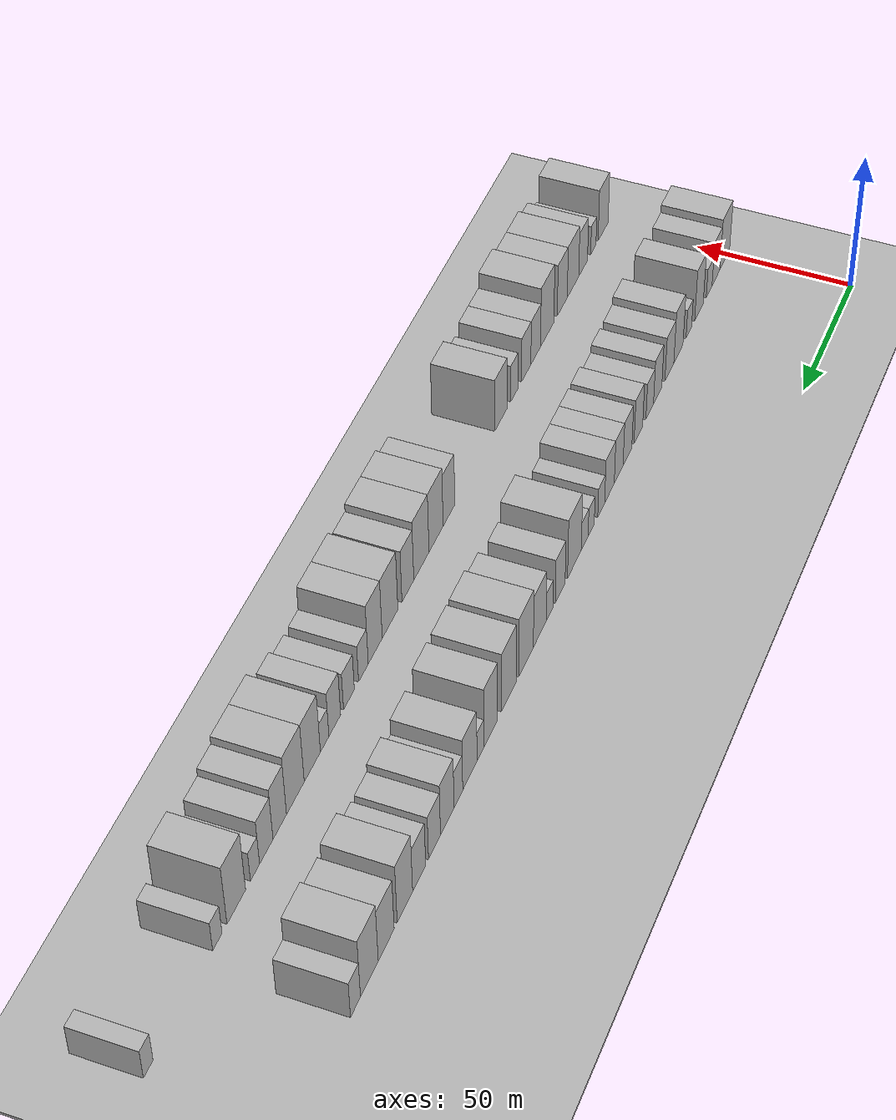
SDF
<sdf version="1.6">
 <world name="default">
  <include><name>ground_plane_1</name><uri>model://HANNAS_ground_plane</uri></include>
  <include>
   <name>ground_plane_2</name>
   <uri>model://HANNAS_ground_plane</uri>
   <pose>100 0 0  0 0 0</pose>
  </include>
  <model name="building_29">
   <static>1</static>
   <pose>50.0000 3.5850 0 0.000000 0.000000 0.000000</pose>
   <link name="link">
    <pose>0 0 10.50 0 0 0</pose>
    <collision name="collision"><geometry><box><size>20.0000 9.9423 21.0000</size></box></geometry></collision>
    <visual name="visual">
     <cast_shadows>0</cast_shadows>
     <geometry><box><size>20.0000 9.9423 21.0000</size></box></geometry>
     <material>
      <script>
       <uri>model://HANNAS_wall/materials/scripts</uri>
       <uri>model://HANNAS_wall/materials/textures</uri>
       <name>vrc/HANNAS_wall</name>
      </script>
     </material>
    </visual>
   </link>
  </model>
  <model name="building_30">
   <static>1</static>
   <pose>50.0000 12.4400 0 0.000000 0.000000 0.000000</pose>
   <link name="link">
    <pose>0 0 9.00 0 0 0</pose>
    <collision name="collision"><geometry><box><size>20.0000 7.7675 18.0000</size></box></geometry></collision>
    <visual name="visual">
     <cast_shadows>0</cast_shadows>
     <geometry><box><size>20.0000 7.7675 18.0000</size></box></geometry>
     <material>
      <script>
       <uri>model://HANNAS_wall/materials/scripts</uri>
       <uri>model://HANNAS_wall/materials/textures</uri>
       <name>vrc/HANNAS_wall</name>
      </script>
     </material>
    </visual>
   </link>
  </model>
  <model name="building_31">
   <static>1</static>
   <pose>50.0000 19.2083 0 0.000000 0.000000 0.000000</pose>
   <link name="link">
    <pose>0 0 6.00 0 0 0</pose>
    <collision name="collision"><geometry><box><size>20.0000 5.7690 12.0000</size></box></geometry></collision>
    <visual name="visual">
     <cast_shadows>0</cast_shadows>
     <geometry><box><size>20.0000 5.7690 12.0000</size></box></geometry>
     <material>
      <script>
       <uri>model://HANNAS_wall/materials/scripts</uri>
       <uri>model://HANNAS_wall/materials/textures</uri>
       <name>vrc/HANNAS_wall</name>
      </script>
     </material>
    </visual>
   </link>
  </model>
  <model name="building_32">
   <static>1</static>
   <pose>50.0000 29.2972 0 0.000000 0.000000 0.000000</pose>
   <link name="link">
    <pose>0 0 10.50 0 0 0</pose>
    <collision name="collision"><geometry><box><size>20.0000 8.4088 21.0000</size></box></geometry></collision>
    <visual name="visual">
     <cast_shadows>0</cast_shadows>
     <geometry><box><size>20.0000 8.4088 21.0000</size></box></geometry>
     <material>
      <script>
       <uri>model://HANNAS_wall/materials/scripts</uri>
       <uri>model://HANNAS_wall/materials/textures</uri>
       <name>vrc/HANNAS_wall</name>
      </script>
     </material>
    </visual>
   </link>
  </model>
  <model name="building_33">
   <static>1</static>
   <pose>50.0000 39.1456 0 0.000000 0.000000 0.000000</pose>
   <link name="link">
    <pose>0 0 6.00 0 0 0</pose>
    <collision name="collision"><geometry><box><size>20.0000 5.2881 12.0000</size></box></geometry></collision>
    <visual name="visual">
     <cast_shadows>0</cast_shadows>
     <geometry><box><size>20.0000 5.2881 12.0000</size></box></geometry>
     <material>
      <script>
       <uri>model://HANNAS_wall/materials/scripts</uri>
       <uri>model://HANNAS_wall/materials/textures</uri>
       <name>vrc/HANNAS_wall</name>
      </script>
     </material>
    </visual>
   </link>
  </model>
  <model name="building_34">
   <static>1</static>
   <pose>50.0000 49.1430 0 0.000000 0.000000 0.000000</pose>
   <link name="link">
    <pose>0 0 10.50 0 0 0</pose>
    <collision name="collision"><geometry><box><size>20.0000 8.7066 21.0000</size></box></geometry></collision>
    <visual name="visual">
     <cast_shadows>0</cast_shadows>
     <geometry><box><size>20.0000 8.7066 21.0000</size></box></geometry>
     <material>
      <script>
       <uri>model://HANNAS_wall/materials/scripts</uri>
       <uri>model://HANNAS_wall/materials/textures</uri>
       <name>vrc/HANNAS_wall</name>
      </script>
     </material>
    </visual>
   </link>
  </model>
  <model name="building_35">
   <static>1</static>
   <pose>50.0000 57.6699 0 0.000000 0.000000 0.000000</pose>
   <link name="link">
    <pose>0 0 9.00 0 0 0</pose>
    <collision name="collision"><geometry><box><size>20.0000 8.3474 18.0000</size></box></geometry></collision>
    <visual name="visual">
     <cast_shadows>0</cast_shadows>
     <geometry><box><size>20.0000 8.3474 18.0000</size></box></geometry>
     <material>
      <script>
       <uri>model://HANNAS_wall/materials/scripts</uri>
       <uri>model://HANNAS_wall/materials/textures</uri>
       <name>vrc/HANNAS_wall</name>
      </script>
     </material>
    </visual>
   </link>
  </model>
  <model name="building_36">
   <static>1</static>
   <pose>50.0000 68.6641 0 0.000000 0.000000 0.000000</pose>
   <link name="link">
    <pose>0 0 9.00 0 0 0</pose>
    <collision name="collision"><geometry><box><size>20.0000 7.6409 18.0000</size></box></geometry></collision>
    <visual name="visual">
     <cast_shadows>0</cast_shadows>
     <geometry><box><size>20.0000 7.6409 18.0000</size></box></geometry>
     <material>
      <script>
       <uri>model://HANNAS_wall/materials/scripts</uri>
       <uri>model://HANNAS_wall/materials/textures</uri>
       <name>vrc/HANNAS_wall</name>
      </script>
     </material>
    </visual>
   </link>
  </model>
  <model name="building_37">
   <static>1</static>
   <pose>50.0000 75.9450 0 0.000000 0.000000 0.000000</pose>
   <link name="link">
    <pose>0 0 7.50 0 0 0</pose>
    <collision name="collision"><geometry><box><size>20.0000 6.9210 15.0000</size></box></geometry></collision>
    <visual name="visual">
     <cast_shadows>0</cast_shadows>
     <geometry><box><size>20.0000 6.9210 15.0000</size></box></geometry>
     <material>
      <script>
       <uri>model://HANNAS_wall/materials/scripts</uri>
       <uri>model://HANNAS_wall/materials/textures</uri>
       <name>vrc/HANNAS_wall</name>
      </script>
     </material>
    </visual>
   </link>
  </model>
  <model name="building_38">
   <static>1</static>
   <pose>50.0000 86.2765 0 0.000000 0.000000 0.000000</pose>
   <link name="link">
    <pose>0 0 9.00 0 0 0</pose>
    <collision name="collision"><geometry><box><size>20.0000 7.7419 18.0000</size></box></geometry></collision>
    <visual name="visual">
     <cast_shadows>0</cast_shadows>
     <geometry><box><size>20.0000 7.7419 18.0000</size></box></geometry>
     <material>
      <script>
       <uri>model://HANNAS_wall/materials/scripts</uri>
       <uri>model://HANNAS_wall/materials/textures</uri>
       <name>vrc/HANNAS_wall</name>
      </script>
     </material>
    </visual>
   </link>
  </model>
  <model name="building_39">
   <static>1</static>
   <pose>50.0000 96.0376 0 0.000000 0.000000 0.000000</pose>
   <link name="link">
    <pose>0 0 9.00 0 0 0</pose>
    <collision name="collision"><geometry><box><size>20.0000 7.7805 18.0000</size></box></geometry></collision>
    <visual name="visual">
     <cast_shadows>0</cast_shadows>
     <geometry><box><size>20.0000 7.7805 18.0000</size></box></geometry>
     <material>
      <script>
       <uri>model://HANNAS_wall/materials/scripts</uri>
       <uri>model://HANNAS_wall/materials/textures</uri>
       <name>vrc/HANNAS_wall</name>
      </script>
     </material>
    </visual>
   </link>
  </model>
  <model name="building_40">
   <static>1</static>
   <pose>50.0000 103.7960 0 0.000000 0.000000 0.000000</pose>
   <link name="link">
    <pose>0 0 9.00 0 0 0</pose>
    <collision name="collision"><geometry><box><size>20.0000 7.7362 18.0000</size></box></geometry></collision>
    <visual name="visual">
     <cast_shadows>0</cast_shadows>
     <geometry><box><size>20.0000 7.7362 18.0000</size></box></geometry>
     <material>
      <script>
       <uri>model://HANNAS_wall/materials/scripts</uri>
       <uri>model://HANNAS_wall/materials/textures</uri>
       <name>vrc/HANNAS_wall</name>
      </script>
     </material>
    </visual>
   </link>
  </model>
  <model name="building_41">
   <static>1</static>
   <pose>50.0000 111.8288 0 0.000000 0.000000 0.000000</pose>
   <link name="link">
    <pose>0 0 9.00 0 0 0</pose>
    <collision name="collision"><geometry><box><size>20.0000 8.3295 18.0000</size></box></geometry></collision>
    <visual name="visual">
     <cast_shadows>0</cast_shadows>
     <geometry><box><size>20.0000 8.3295 18.0000</size></box></geometry>
     <material>
      <script>
       <uri>model://HANNAS_wall/materials/scripts</uri>
       <uri>model://HANNAS_wall/materials/textures</uri>
       <name>vrc/HANNAS_wall</name>
      </script>
     </material>
    </visual>
   </link>
  </model>
  <model name="building_42">
   <static>1</static>
   <pose>50.0000 118.9388 0 0.000000 0.000000 0.000000</pose>
   <link name="link">
    <pose>0 0 6.00 0 0 0</pose>
    <collision name="collision"><geometry><box><size>20.0000 5.8905 12.0000</size></box></geometry></collision>
    <visual name="visual">
     <cast_shadows>0</cast_shadows>
     <geometry><box><size>20.0000 5.8905 12.0000</size></box></geometry>
     <material>
      <script>
       <uri>model://HANNAS_wall/materials/scripts</uri>
       <uri>model://HANNAS_wall/materials/textures</uri>
       <name>vrc/HANNAS_wall</name>
      </script>
     </material>
    </visual>
   </link>
  </model>
  <model name="building_43">
   <static>1</static>
   <pose>50.0000 127.4671 0 0.000000 0.000000 0.000000</pose>
   <link name="link">
    <pose>0 0 6.00 0 0 0</pose>
    <collision name="collision"><geometry><box><size>20.0000 5.1661 12.0000</size></box></geometry></collision>
    <visual name="visual">
     <cast_shadows>0</cast_shadows>
     <geometry><box><size>20.0000 5.1661 12.0000</size></box></geometry>
     <material>
      <script>
       <uri>model://HANNAS_wall/materials/scripts</uri>
       <uri>model://HANNAS_wall/materials/textures</uri>
       <name>vrc/HANNAS_wall</name>
      </script>
     </material>
    </visual>
   </link>
  </model>
  <model name="building_44">
   <static>1</static>
   <pose>50.0000 132.9723 0 0.000000 0.000000 0.000000</pose>
   <link name="link">
    <pose>0 0 6.00 0 0 0</pose>
    <collision name="collision"><geometry><box><size>20.0000 5.8444 12.0000</size></box></geometry></collision>
    <visual name="visual">
     <cast_shadows>0</cast_shadows>
     <geometry><box><size>20.0000 5.8444 12.0000</size></box></geometry>
     <material>
      <script>
       <uri>model://HANNAS_wall/materials/scripts</uri>
       <uri>model://HANNAS_wall/materials/textures</uri>
       <name>vrc/HANNAS_wall</name>
      </script>
     </material>
    </visual>
   </link>
  </model>
  <model name="building_45">
   <static>1</static>
   <pose>50.0000 141.5381 0 0.000000 0.000000 0.000000</pose>
   <link name="link">
    <pose>0 0 12.00 0 0 0</pose>
    <collision name="collision"><geometry><box><size>20.0000 11.2872 24.0000</size></box></geometry></collision>
    <visual name="visual">
     <cast_shadows>0</cast_shadows>
     <geometry><box><size>20.0000 11.2872 24.0000</size></box></geometry>
     <material>
      <script>
       <uri>model://HANNAS_wall/materials/scripts</uri>
       <uri>model://HANNAS_wall/materials/textures</uri>
       <name>vrc/HANNAS_wall</name>
      </script>
     </material>
    </visual>
   </link>
  </model>
  <model name="building_46">
   <static>1</static>
   <pose>50.0000 153.1510 0 0.000000 0.000000 0.000000</pose>
   <link name="link">
    <pose>0 0 9.00 0 0 0</pose>
    <collision name="collision"><geometry><box><size>20.0000 7.9388 18.0000</size></box></geometry></collision>
    <visual name="visual">
     <cast_shadows>0</cast_shadows>
     <geometry><box><size>20.0000 7.9388 18.0000</size></box></geometry>
     <material>
      <script>
       <uri>model://HANNAS_wall/materials/scripts</uri>
       <uri>model://HANNAS_wall/materials/textures</uri>
       <name>vrc/HANNAS_wall</name>
      </script>
     </material>
    </visual>
   </link>
  </model>
  <model name="building_47">
   <static>1</static>
   <pose>50.0000 161.8052 0 0.000000 0.000000 0.000000</pose>
   <link name="link">
    <pose>0 0 6.00 0 0 0</pose>
    <collision name="collision"><geometry><box><size>20.0000 5.3695 12.0000</size></box></geometry></collision>
    <visual name="visual">
     <cast_shadows>0</cast_shadows>
     <geometry><box><size>20.0000 5.3695 12.0000</size></box></geometry>
     <material>
      <script>
       <uri>model://HANNAS_wall/materials/scripts</uri>
       <uri>model://HANNAS_wall/materials/textures</uri>
       <name>vrc/HANNAS_wall</name>
      </script>
     </material>
    </visual>
   </link>
  </model>
  <model name="building_48">
   <static>1</static>
   <pose>50.0000 169.5422 0 0.000000 0.000000 0.000000</pose>
   <link name="link">
    <pose>0 0 10.50 0 0 0</pose>
    <collision name="collision"><geometry><box><size>20.0000 10.1045 21.0000</size></box></geometry></collision>
    <visual name="visual">
     <cast_shadows>0</cast_shadows>
     <geometry><box><size>20.0000 10.1045 21.0000</size></box></geometry>
     <material>
      <script>
       <uri>model://HANNAS_wall/materials/scripts</uri>
       <uri>model://HANNAS_wall/materials/textures</uri>
       <name>vrc/HANNAS_wall</name>
      </script>
     </material>
    </visual>
   </link>
  </model>
  <model name="building_49">
   <static>1</static>
   <pose>50.0000 180.2540 0 0.000000 0.000000 0.000000</pose>
   <link name="link">
    <pose>0 0 12.00 0 0 0</pose>
    <collision name="collision"><geometry><box><size>20.0000 11.3189 24.0000</size></box></geometry></collision>
    <visual name="visual">
     <cast_shadows>0</cast_shadows>
     <geometry><box><size>20.0000 11.3189 24.0000</size></box></geometry>
     <material>
      <script>
       <uri>model://HANNAS_wall/materials/scripts</uri>
       <uri>model://HANNAS_wall/materials/textures</uri>
       <name>vrc/HANNAS_wall</name>
      </script>
     </material>
    </visual>
   </link>
  </model>
  <model name="building_50">
   <static>1</static>
   <pose>50.0000 193.4808 0 0.000000 0.000000 0.000000</pose>
   <link name="link">
    <pose>0 0 12.00 0 0 0</pose>
    <collision name="collision"><geometry><box><size>20.0000 11.1347 24.0000</size></box></geometry></collision>
    <visual name="visual">
     <cast_shadows>0</cast_shadows>
     <geometry><box><size>20.0000 11.1347 24.0000</size></box></geometry>
     <material>
      <script>
       <uri>model://HANNAS_wall/materials/scripts</uri>
       <uri>model://HANNAS_wall/materials/textures</uri>
       <name>vrc/HANNAS_wall</name>
      </script>
     </material>
    </visual>
   </link>
  </model>
  <model name="building_51">
   <static>1</static>
   <pose>50.0000 207.0687 0 0.000000 0.000000 0.000000</pose>
   <link name="link">
    <pose>0 0 12.00 0 0 0</pose>
    <collision name="collision"><geometry><box><size>20.0000 10.0411 24.0000</size></box></geometry></collision>
    <visual name="visual">
     <cast_shadows>0</cast_shadows>
     <geometry><box><size>20.0000 10.0411 24.0000</size></box></geometry>
     <material>
      <script>
       <uri>model://HANNAS_wall/materials/scripts</uri>
       <uri>model://HANNAS_wall/materials/textures</uri>
       <name>vrc/HANNAS_wall</name>
      </script>
     </material>
    </visual>
   </link>
  </model>
  <model name="building_52">
   <static>1</static>
   <pose>50.0000 214.6872 0 0.000000 0.000000 0.000000</pose>
   <link name="link">
    <pose>0 0 6.00 0 0 0</pose>
    <collision name="collision"><geometry><box><size>20.0000 5.1960 12.0000</size></box></geometry></collision>
    <visual name="visual">
     <cast_shadows>0</cast_shadows>
     <geometry><box><size>20.0000 5.1960 12.0000</size></box></geometry>
     <material>
      <script>
       <uri>model://HANNAS_wall/materials/scripts</uri>
       <uri>model://HANNAS_wall/materials/textures</uri>
       <name>vrc/HANNAS_wall</name>
      </script>
     </material>
    </visual>
   </link>
  </model>
  <model name="building_53">
   <static>1</static>
   <pose>50.0000 222.4880 0 0.000000 0.000000 0.000000</pose>
   <link name="link">
    <pose>0 0 10.50 0 0 0</pose>
    <collision name="collision"><geometry><box><size>20.0000 10.4055 21.0000</size></box></geometry></collision>
    <visual name="visual">
     <cast_shadows>0</cast_shadows>
     <geometry><box><size>20.0000 10.4055 21.0000</size></box></geometry>
     <material>
      <script>
       <uri>model://HANNAS_wall/materials/scripts</uri>
       <uri>model://HANNAS_wall/materials/textures</uri>
       <name>vrc/HANNAS_wall</name>
      </script>
     </material>
    </visual>
   </link>
  </model>
  <model name="building_54">
   <static>1</static>
   <pose>50.0000 230.7958 0 0.000000 0.000000 0.000000</pose>
   <link name="link">
    <pose>0 0 7.50 0 0 0</pose>
    <collision name="collision"><geometry><box><size>20.0000 6.2102 15.0000</size></box></geometry></collision>
    <visual name="visual">
     <cast_shadows>0</cast_shadows>
     <geometry><box><size>20.0000 6.2102 15.0000</size></box></geometry>
     <material>
      <script>
       <uri>model://HANNAS_wall/materials/scripts</uri>
       <uri>model://HANNAS_wall/materials/textures</uri>
       <name>vrc/HANNAS_wall</name>
      </script>
     </material>
    </visual>
   </link>
  </model>
  <model name="building_55">
   <static>1</static>
   <pose>50.0000 238.6877 0 0.000000 0.000000 0.000000</pose>
   <link name="link">
    <pose>0 0 10.50 0 0 0</pose>
    <collision name="collision"><geometry><box><size>20.0000 9.5736 21.0000</size></box></geometry></collision>
    <visual name="visual">
     <cast_shadows>0</cast_shadows>
     <geometry><box><size>20.0000 9.5736 21.0000</size></box></geometry>
     <material>
      <script>
       <uri>model://HANNAS_wall/materials/scripts</uri>
       <uri>model://HANNAS_wall/materials/textures</uri>
       <name>vrc/HANNAS_wall</name>
      </script>
     </material>
    </visual>
   </link>
  </model>
  <model name="building_56">
   <static>1</static>
   <pose>50.0000 247.6380 0 0.000000 0.000000 0.000000</pose>
   <link name="link">
    <pose>0 0 9.00 0 0 0</pose>
    <collision name="collision"><geometry><box><size>20.0000 8.3271 18.0000</size></box></geometry></collision>
    <visual name="visual">
     <cast_shadows>0</cast_shadows>
     <geometry><box><size>20.0000 8.3271 18.0000</size></box></geometry>
     <material>
      <script>
       <uri>model://HANNAS_wall/materials/scripts</uri>
       <uri>model://HANNAS_wall/materials/textures</uri>
       <name>vrc/HANNAS_wall</name>
      </script>
     </material>
    </visual>
   </link>
  </model>
  <model name="building_57">
   <static>1</static>
   <pose>50.0000 258.2415 0 0.000000 0.000000 0.000000</pose>
   <link name="link">
    <pose>0 0 9.00 0 0 0</pose>
    <collision name="collision"><geometry><box><size>20.0000 8.8799 18.0000</size></box></geometry></collision>
    <visual name="visual">
     <cast_shadows>0</cast_shadows>
     <geometry><box><size>20.0000 8.8799 18.0000</size></box></geometry>
     <material>
      <script>
       <uri>model://HANNAS_wall/materials/scripts</uri>
       <uri>model://HANNAS_wall/materials/textures</uri>
       <name>vrc/HANNAS_wall</name>
      </script>
     </material>
    </visual>
   </link>
  </model>
  <model name="building_58">
   <static>1</static>
   <pose>50.0000 267.8703 0 0.000000 0.000000 0.000000</pose>
   <link name="link">
    <pose>0 0 12.00 0 0 0</pose>
    <collision name="collision"><geometry><box><size>20.0000 10.3775 24.0000</size></box></geometry></collision>
    <visual name="visual">
     <cast_shadows>0</cast_shadows>
     <geometry><box><size>20.0000 10.3775 24.0000</size></box></geometry>
     <material>
      <script>
       <uri>model://HANNAS_wall/materials/scripts</uri>
       <uri>model://HANNAS_wall/materials/textures</uri>
       <name>vrc/HANNAS_wall</name>
      </script>
     </material>
    </visual>
   </link>
  </model>
  <model name="building_59">
   <static>1</static>
   <pose>50.0000 280.2783 0 0.000000 0.000000 0.000000</pose>
   <link name="link">
    <pose>0 0 10.50 0 0 0</pose>
    <collision name="collision"><geometry><box><size>20.0000 10.4386 21.0000</size></box></geometry></collision>
    <visual name="visual">
     <cast_shadows>0</cast_shadows>
     <geometry><box><size>20.0000 10.4386 21.0000</size></box></geometry>
     <material>
      <script>
       <uri>model://HANNAS_wall/materials/scripts</uri>
       <uri>model://HANNAS_wall/materials/textures</uri>
       <name>vrc/HANNAS_wall</name>
      </script>
     </material>
    </visual>
   </link>
  </model>
  <model name="building_60">
   <static>1</static>
   <pose>50.0000 291.2309 0 0.000000 0.000000 0.000000</pose>
   <link name="link">
    <pose>0 0 12.00 0 0 0</pose>
    <collision name="collision"><geometry><box><size>20.0000 11.4666 24.0000</size></box></geometry></collision>
    <visual name="visual">
     <cast_shadows>0</cast_shadows>
     <geometry><box><size>20.0000 11.4666 24.0000</size></box></geometry>
     <material>
      <script>
       <uri>model://HANNAS_wall/materials/scripts</uri>
       <uri>model://HANNAS_wall/materials/textures</uri>
       <name>vrc/HANNAS_wall</name>
      </script>
     </material>
    </visual>
   </link>
  </model>
  <model name="building_61">
   <static>1</static>
   <pose>50.0000 300.1494 0 0.000000 0.000000 0.000000</pose>
   <link name="link">
    <pose>0 0 7.50 0 0 0</pose>
    <collision name="collision"><geometry><box><size>20.0000 6.3704 15.0000</size></box></geometry></collision>
    <visual name="visual">
     <cast_shadows>0</cast_shadows>
     <geometry><box><size>20.0000 6.3704 15.0000</size></box></geometry>
     <material>
      <script>
       <uri>model://HANNAS_wall/materials/scripts</uri>
       <uri>model://HANNAS_wall/materials/textures</uri>
       <name>vrc/HANNAS_wall</name>
      </script>
     </material>
    </visual>
   </link>
  </model>
  <model name="building_96">
   <static>1</static>
   <pose>90.0000 4.2254 0 0.000000 0.000000 0.000000</pose>
   <link name="link">
    <pose>0 0 10.50 0 0 0</pose>
    <collision name="collision"><geometry><box><size>20.0000 9.4362 21.0000</size></box></geometry></collision>
    <visual name="visual">
     <cast_shadows>0</cast_shadows>
     <geometry><box><size>20.0000 9.4362 21.0000</size></box></geometry>
     <material>
      <script>
       <uri>model://HANNAS_wall/materials/scripts</uri>
       <uri>model://HANNAS_wall/materials/textures</uri>
       <name>vrc/HANNAS_wall</name>
      </script>
     </material>
    </visual>
   </link>
  </model>
  <model name="building_97">
   <static>1</static>
   <pose>90.0000 13.3908 0 0.000000 0.000000 0.000000</pose>
   <link name="link">
    <pose>0 0 6.00 0 0 0</pose>
    <collision name="collision"><geometry><box><size>20.0000 4.8945 12.0000</size></box></geometry></collision>
    <visual name="visual">
     <cast_shadows>0</cast_shadows>
     <geometry><box><size>20.0000 4.8945 12.0000</size></box></geometry>
     <material>
      <script>
       <uri>model://HANNAS_wall/materials/scripts</uri>
       <uri>model://HANNAS_wall/materials/textures</uri>
       <name>vrc/HANNAS_wall</name>
      </script>
     </material>
    </visual>
   </link>
  </model>
  <model name="building_98">
   <static>1</static>
   <pose>90.0000 22.8667 0 0.000000 0.000000 0.000000</pose>
   <link name="link">
    <pose>0 0 9.00 0 0 0</pose>
    <collision name="collision"><geometry><box><size>20.0000 8.0575 18.0000</size></box></geometry></collision>
    <visual name="visual">
     <cast_shadows>0</cast_shadows>
     <geometry><box><size>20.0000 8.0575 18.0000</size></box></geometry>
     <material>
      <script>
       <uri>model://HANNAS_wall/materials/scripts</uri>
       <uri>model://HANNAS_wall/materials/textures</uri>
       <name>vrc/HANNAS_wall</name>
      </script>
     </material>
    </visual>
   </link>
  </model>
  <model name="building_99">
   <static>1</static>
   <pose>90.0000 32.1004 0 0.000000 0.000000 0.000000</pose>
   <link name="link">
    <pose>0 0 10.50 0 0 0</pose>
    <collision name="collision"><geometry><box><size>20.0000 10.4099 21.0000</size></box></geometry></collision>
    <visual name="visual">
     <cast_shadows>0</cast_shadows>
     <geometry><box><size>20.0000 10.4099 21.0000</size></box></geometry>
     <material>
      <script>
       <uri>model://HANNAS_wall/materials/scripts</uri>
       <uri>model://HANNAS_wall/materials/textures</uri>
       <name>vrc/HANNAS_wall</name>
      </script>
     </material>
    </visual>
   </link>
  </model>
  <model name="building_100">
   <static>1</static>
   <pose>90.0000 41.7766 0 0.000000 0.000000 0.000000</pose>
   <link name="link">
    <pose>0 0 10.50 0 0 0</pose>
    <collision name="collision"><geometry><box><size>20.0000 8.9423 21.0000</size></box></geometry></collision>
    <visual name="visual">
     <cast_shadows>0</cast_shadows>
     <geometry><box><size>20.0000 8.9423 21.0000</size></box></geometry>
     <material>
      <script>
       <uri>model://HANNAS_wall/materials/scripts</uri>
       <uri>model://HANNAS_wall/materials/textures</uri>
       <name>vrc/HANNAS_wall</name>
      </script>
     </material>
    </visual>
   </link>
  </model>
  <model name="building_101">
   <static>1</static>
   <pose>90.0000 55.0793 0 0.000000 0.000000 0.000000</pose>
   <link name="link">
    <pose>0 0 12.00 0 0 0</pose>
    <collision name="collision"><geometry><box><size>20.0000 11.6632 24.0000</size></box></geometry></collision>
    <visual name="visual">
     <cast_shadows>0</cast_shadows>
     <geometry><box><size>20.0000 11.6632 24.0000</size></box></geometry>
     <material>
      <script>
       <uri>model://HANNAS_wall/materials/scripts</uri>
       <uri>model://HANNAS_wall/materials/textures</uri>
       <name>vrc/HANNAS_wall</name>
      </script>
     </material>
    </visual>
   </link>
  </model>
  <model name="building_102">
   <static>1</static>
   <pose>90.0000 65.1157 0 0.000000 0.000000 0.000000</pose>
   <link name="link">
    <pose>0 0 9.00 0 0 0</pose>
    <collision name="collision"><geometry><box><size>20.0000 8.4096 18.0000</size></box></geometry></collision>
    <visual name="visual">
     <cast_shadows>0</cast_shadows>
     <geometry><box><size>20.0000 8.4096 18.0000</size></box></geometry>
     <material>
      <script>
       <uri>model://HANNAS_wall/materials/scripts</uri>
       <uri>model://HANNAS_wall/materials/textures</uri>
       <name>vrc/HANNAS_wall</name>
      </script>
     </material>
    </visual>
   </link>
  </model>
  <model name="building_103">
   <static>1</static>
   <pose>90.0000 73.2762 0 0.000000 0.000000 0.000000</pose>
   <link name="link">
    <pose>0 0 9.00 0 0 0</pose>
    <collision name="collision"><geometry><box><size>20.0000 7.9115 18.0000</size></box></geometry></collision>
    <visual name="visual">
     <cast_shadows>0</cast_shadows>
     <geometry><box><size>20.0000 7.9115 18.0000</size></box></geometry>
     <material>
      <script>
       <uri>model://HANNAS_wall/materials/scripts</uri>
       <uri>model://HANNAS_wall/materials/textures</uri>
       <name>vrc/HANNAS_wall</name>
      </script>
     </material>
    </visual>
   </link>
  </model>
  <model name="building_104">
   <static>1</static>
   <pose>90.0000 83.3145 0 0.000000 0.000000 0.000000</pose>
   <link name="link">
    <pose>0 0 7.50 0 0 0</pose>
    <collision name="collision"><geometry><box><size>20.0000 6.1651 15.0000</size></box></geometry></collision>
    <visual name="visual">
     <cast_shadows>0</cast_shadows>
     <geometry><box><size>20.0000 6.1651 15.0000</size></box></geometry>
     <material>
      <script>
       <uri>model://HANNAS_wall/materials/scripts</uri>
       <uri>model://HANNAS_wall/materials/textures</uri>
       <name>vrc/HANNAS_wall</name>
      </script>
     </material>
    </visual>
   </link>
  </model>
  <model name="building_105">
   <static>1</static>
   <pose>90.0000 94.5282 0 0.000000 0.000000 0.000000</pose>
   <link name="link">
    <pose>0 0 10.50 0 0 0</pose>
    <collision name="collision"><geometry><box><size>20.0000 10.2623 21.0000</size></box></geometry></collision>
    <visual name="visual">
     <cast_shadows>0</cast_shadows>
     <geometry><box><size>20.0000 10.2623 21.0000</size></box></geometry>
     <material>
      <script>
       <uri>model://HANNAS_wall/materials/scripts</uri>
       <uri>model://HANNAS_wall/materials/textures</uri>
       <name>vrc/HANNAS_wall</name>
      </script>
     </material>
    </visual>
   </link>
  </model>
  <model name="building_106">
   <static>1</static>
   <pose>90.0000 136.3253 0 0.000000 0.000000 0.000000</pose>
   <link name="link">
    <pose>0 0 10.50 0 0 0</pose>
    <collision name="collision"><geometry><box><size>20.0000 9.1106 21.0000</size></box></geometry></collision>
    <visual name="visual">
     <cast_shadows>0</cast_shadows>
     <geometry><box><size>20.0000 9.1106 21.0000</size></box></geometry>
     <material>
      <script>
       <uri>model://HANNAS_wall/materials/scripts</uri>
       <uri>model://HANNAS_wall/materials/textures</uri>
       <name>vrc/HANNAS_wall</name>
      </script>
     </material>
    </visual>
   </link>
  </model>
  <model name="building_107">
   <static>1</static>
   <pose>90.0000 146.2943 0 0.000000 0.000000 0.000000</pose>
   <link name="link">
    <pose>0 0 12.00 0 0 0</pose>
    <collision name="collision"><geometry><box><size>20.0000 10.8274 24.0000</size></box></geometry></collision>
    <visual name="visual">
     <cast_shadows>0</cast_shadows>
     <geometry><box><size>20.0000 10.8274 24.0000</size></box></geometry>
     <material>
      <script>
       <uri>model://HANNAS_wall/materials/scripts</uri>
       <uri>model://HANNAS_wall/materials/textures</uri>
       <name>vrc/HANNAS_wall</name>
      </script>
     </material>
    </visual>
   </link>
  </model>
  <model name="building_108">
   <static>1</static>
   <pose>90.0000 157.4324 0 0.000000 0.000000 0.000000</pose>
   <link name="link">
    <pose>0 0 12.00 0 0 0</pose>
    <collision name="collision"><geometry><box><size>20.0000 11.4489 24.0000</size></box></geometry></collision>
    <visual name="visual">
     <cast_shadows>0</cast_shadows>
     <geometry><box><size>20.0000 11.4489 24.0000</size></box></geometry>
     <material>
      <script>
       <uri>model://HANNAS_wall/materials/scripts</uri>
       <uri>model://HANNAS_wall/materials/textures</uri>
       <name>vrc/HANNAS_wall</name>
      </script>
     </material>
    </visual>
   </link>
  </model>
  <model name="building_109">
   <static>1</static>
   <pose>90.0000 167.5365 0 0.000000 0.000000 0.000000</pose>
   <link name="link">
    <pose>0 0 10.50 0 0 0</pose>
    <collision name="collision"><geometry><box><size>20.0000 8.7593 21.0000</size></box></geometry></collision>
    <visual name="visual">
     <cast_shadows>0</cast_shadows>
     <geometry><box><size>20.0000 8.7593 21.0000</size></box></geometry>
     <material>
      <script>
       <uri>model://HANNAS_wall/materials/scripts</uri>
       <uri>model://HANNAS_wall/materials/textures</uri>
       <name>vrc/HANNAS_wall</name>
      </script>
     </material>
    </visual>
   </link>
  </model>
  <model name="building_110">
   <static>1</static>
   <pose>90.0000 180.5815 0 0.000000 0.000000 0.000000</pose>
   <link name="link">
    <pose>0 0 12.00 0 0 0</pose>
    <collision name="collision"><geometry><box><size>20.0000 11.3307 24.0000</size></box></geometry></collision>
    <visual name="visual">
     <cast_shadows>0</cast_shadows>
     <geometry><box><size>20.0000 11.3307 24.0000</size></box></geometry>
     <material>
      <script>
       <uri>model://HANNAS_wall/materials/scripts</uri>
       <uri>model://HANNAS_wall/materials/textures</uri>
       <name>vrc/HANNAS_wall</name>
      </script>
     </material>
    </visual>
   </link>
  </model>
  <model name="building_111">
   <static>1</static>
   <pose>90.0000 191.2357 0 0.000000 0.000000 0.000000</pose>
   <link name="link">
    <pose>0 0 12.00 0 0 0</pose>
    <collision name="collision"><geometry><box><size>20.0000 9.9777 24.0000</size></box></geometry></collision>
    <visual name="visual">
     <cast_shadows>0</cast_shadows>
     <geometry><box><size>20.0000 9.9777 24.0000</size></box></geometry>
     <material>
      <script>
       <uri>model://HANNAS_wall/materials/scripts</uri>
       <uri>model://HANNAS_wall/materials/textures</uri>
       <name>vrc/HANNAS_wall</name>
      </script>
     </material>
    </visual>
   </link>
  </model>
  <model name="building_112">
   <static>1</static>
   <pose>90.0000 199.6049 0 0.000000 0.000000 0.000000</pose>
   <link name="link">
    <pose>0 0 7.50 0 0 0</pose>
    <collision name="collision"><geometry><box><size>20.0000 6.7607 15.0000</size></box></geometry></collision>
    <visual name="visual">
     <cast_shadows>0</cast_shadows>
     <geometry><box><size>20.0000 6.7607 15.0000</size></box></geometry>
     <material>
      <script>
       <uri>model://HANNAS_wall/materials/scripts</uri>
       <uri>model://HANNAS_wall/materials/textures</uri>
       <name>vrc/HANNAS_wall</name>
      </script>
     </material>
    </visual>
   </link>
  </model>
  <model name="building_113">
   <static>1</static>
   <pose>90.0000 209.7071 0 0.000000 0.000000 0.000000</pose>
   <link name="link">
    <pose>0 0 7.50 0 0 0</pose>
    <collision name="collision"><geometry><box><size>20.0000 7.4438 15.0000</size></box></geometry></collision>
    <visual name="visual">
     <cast_shadows>0</cast_shadows>
     <geometry><box><size>20.0000 7.4438 15.0000</size></box></geometry>
     <material>
      <script>
       <uri>model://HANNAS_wall/materials/scripts</uri>
       <uri>model://HANNAS_wall/materials/textures</uri>
       <name>vrc/HANNAS_wall</name>
      </script>
     </material>
    </visual>
   </link>
  </model>
  <model name="building_114">
   <static>1</static>
   <pose>90.0000 219.4254 0 0.000000 0.000000 0.000000</pose>
   <link name="link">
    <pose>0 0 9.00 0 0 0</pose>
    <collision name="collision"><geometry><box><size>20.0000 7.9928 18.0000</size></box></geometry></collision>
    <visual name="visual">
     <cast_shadows>0</cast_shadows>
     <geometry><box><size>20.0000 7.9928 18.0000</size></box></geometry>
     <material>
      <script>
       <uri>model://HANNAS_wall/materials/scripts</uri>
       <uri>model://HANNAS_wall/materials/textures</uri>
       <name>vrc/HANNAS_wall</name>
      </script>
     </material>
    </visual>
   </link>
  </model>
  <model name="building_115">
   <static>1</static>
   <pose>90.0000 226.2849 0 0.000000 0.000000 0.000000</pose>
   <link name="link">
    <pose>0 0 6.00 0 0 0</pose>
    <collision name="collision"><geometry><box><size>20.0000 5.7262 12.0000</size></box></geometry></collision>
    <visual name="visual">
     <cast_shadows>0</cast_shadows>
     <geometry><box><size>20.0000 5.7262 12.0000</size></box></geometry>
     <material>
      <script>
       <uri>model://HANNAS_wall/materials/scripts</uri>
       <uri>model://HANNAS_wall/materials/textures</uri>
       <name>vrc/HANNAS_wall</name>
      </script>
     </material>
    </visual>
   </link>
  </model>
  <model name="building_116">
   <static>1</static>
   <pose>90.0000 234.5177 0 0.000000 0.000000 0.000000</pose>
   <link name="link">
    <pose>0 0 12.00 0 0 0</pose>
    <collision name="collision"><geometry><box><size>20.0000 10.7395 24.0000</size></box></geometry></collision>
    <visual name="visual">
     <cast_shadows>0</cast_shadows>
     <geometry><box><size>20.0000 10.7395 24.0000</size></box></geometry>
     <material>
      <script>
       <uri>model://HANNAS_wall/materials/scripts</uri>
       <uri>model://HANNAS_wall/materials/textures</uri>
       <name>vrc/HANNAS_wall</name>
      </script>
     </material>
    </visual>
   </link>
  </model>
  <model name="building_117">
   <static>1</static>
   <pose>90.0000 245.6696 0 0.000000 0.000000 0.000000</pose>
   <link name="link">
    <pose>0 0 12.00 0 0 0</pose>
    <collision name="collision"><geometry><box><size>20.0000 11.5643 24.0000</size></box></geometry></collision>
    <visual name="visual">
     <cast_shadows>0</cast_shadows>
     <geometry><box><size>20.0000 11.5643 24.0000</size></box></geometry>
     <material>
      <script>
       <uri>model://HANNAS_wall/materials/scripts</uri>
       <uri>model://HANNAS_wall/materials/textures</uri>
       <name>vrc/HANNAS_wall</name>
      </script>
     </material>
    </visual>
   </link>
  </model>
  <model name="building_118">
   <static>1</static>
   <pose>90.0000 255.7717 0 0.000000 0.000000 0.000000</pose>
   <link name="link">
    <pose>0 0 10.50 0 0 0</pose>
    <collision name="collision"><geometry><box><size>20.0000 8.6398 21.0000</size></box></geometry></collision>
    <visual name="visual">
     <cast_shadows>0</cast_shadows>
     <geometry><box><size>20.0000 8.6398 21.0000</size></box></geometry>
     <material>
      <script>
       <uri>model://HANNAS_wall/materials/scripts</uri>
       <uri>model://HANNAS_wall/materials/textures</uri>
       <name>vrc/HANNAS_wall</name>
      </script>
     </material>
    </visual>
   </link>
  </model>
  <model name="building_119">
   <static>1</static>
   <pose>90.0000 264.3322 0 0.000000 0.000000 0.000000</pose>
   <link name="link">
    <pose>0 0 9.00 0 0 0</pose>
    <collision name="collision"><geometry><box><size>20.0000 8.4814 18.0000</size></box></geometry></collision>
    <visual name="visual">
     <cast_shadows>0</cast_shadows>
     <geometry><box><size>20.0000 8.4814 18.0000</size></box></geometry>
     <material>
      <script>
       <uri>model://HANNAS_wall/materials/scripts</uri>
       <uri>model://HANNAS_wall/materials/textures</uri>
       <name>vrc/HANNAS_wall</name>
      </script>
     </material>
    </visual>
   </link>
  </model>
  <model name="building_120">
   <static>1</static>
   <pose>90.0000 271.4271 0 0.000000 0.000000 0.000000</pose>
   <link name="link">
    <pose>0 0 6.00 0 0 0</pose>
    <collision name="collision"><geometry><box><size>20.0000 5.7083 12.0000</size></box></geometry></collision>
    <visual name="visual">
     <cast_shadows>0</cast_shadows>
     <geometry><box><size>20.0000 5.7083 12.0000</size></box></geometry>
     <material>
      <script>
       <uri>model://HANNAS_wall/materials/scripts</uri>
       <uri>model://HANNAS_wall/materials/textures</uri>
       <name>vrc/HANNAS_wall</name>
      </script>
     </material>
    </visual>
   </link>
  </model>
  <model name="building_121">
   <static>1</static>
   <pose>90.0000 282.9670 0 0.000000 0.000000 0.000000</pose>
   <link name="link">
    <pose>0 0 12.00 0 0 0</pose>
    <collision name="collision"><geometry><box><size>20.0000 11.3715 24.0000</size></box></geometry></collision>
    <visual name="visual">
     <cast_shadows>0</cast_shadows>
     <geometry><box><size>20.0000 11.3715 24.0000</size></box></geometry>
     <material>
      <script>
       <uri>model://HANNAS_wall/materials/scripts</uri>
       <uri>model://HANNAS_wall/materials/textures</uri>
       <name>vrc/HANNAS_wall</name>
      </script>
     </material>
    </visual>
   </link>
  </model>
  <model name="building_122">
   <static>1</static>
   <pose>90.0000 294.4657 0 0.000000 0.000000 0.000000</pose>
   <link name="link">
    <pose>0 0 6.00 0 0 0</pose>
    <collision name="collision"><geometry><box><size>20.0000 5.6260 12.0000</size></box></geometry></collision>
    <visual name="visual">
     <cast_shadows>0</cast_shadows>
     <geometry><box><size>20.0000 5.6260 12.0000</size></box></geometry>
     <material>
      <script>
       <uri>model://HANNAS_wall/materials/scripts</uri>
       <uri>model://HANNAS_wall/materials/textures</uri>
       <name>vrc/HANNAS_wall</name>
      </script>
     </material>
    </visual>
   </link>
  </model>
  <model name="building_123">
   <static>1</static>
   <pose>90.0000 334.3966 0 0.000000 0.000000 0.000000</pose>
   <link name="link">
    <pose>0 0 6.00 0 0 0</pose>
    <collision name="collision"><geometry><box><size>20.0000 5.4119 12.0000</size></box></geometry></collision>
    <visual name="visual">
     <cast_shadows>0</cast_shadows>
     <geometry><box><size>20.0000 5.4119 12.0000</size></box></geometry>
     <material>
      <script>
       <uri>model://HANNAS_wall/materials/scripts</uri>
       <uri>model://HANNAS_wall/materials/textures</uri>
       <name>vrc/HANNAS_wall</name>
      </script>
     </material>
    </visual>
   </link>
  </model>
 </world>
</sdf>
